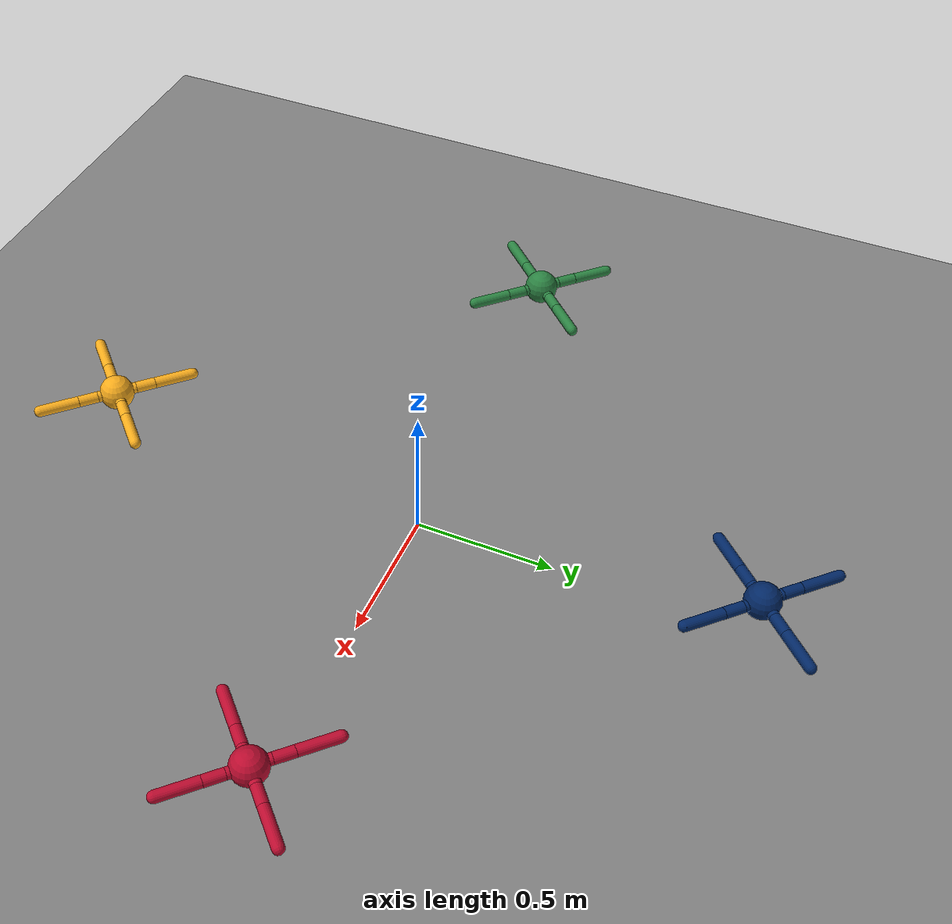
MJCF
<mujoco model="ant">
  <size njmax="5000" nconmax="1500" />
  <compiler angle="radian" coordinate="local" inertiafromgeom="true" />
  <option integrator="RK4" timestep="0.01" />
  <custom>
    <numeric data="0.0 0.0 0.55 1.0 0.0 0.0 0.0 0.0 1.0 0.0 -1.0 0.0 -1.0 0.0 1.0" name="init_qpos" />
  </custom>
  <default>
    <joint armature="1" damping="1" limited="true" />
    <geom condim="6" density="5.0" />
    <site size="0.032" type="sphere" />
  <default class="agent">
    <geom rgba="0.7412 0.0431 0.1843 1" />
  </default>
  <default class="agent1">
    <geom rgba="0.0039 0.1529 0.3961 1" />
  </default>
  </default>
  <worldbody>
    <geom name="floor" size="5 5 0.1" type="plane" condim="6" conaffinity="3" />
    <body name="agent" pos="1.2000 0.0000 0.18" childclass="agent">
      <site name="agent" rgba="1 0 0 .1" pos="0 0 -0.02" />
      <camera name="vision" pos="0 0.05 0.05" euler="1.57 0 0" />
      <geom name="torso_geom" pos="0 0 0" size="0.0625" type="sphere" rgba="0.7412 0.0431 0.1843 1.0" />
      <joint armature="0" damping="0" limited="false" margin="0.01" name="root" pos="0 0 0" type="free" />
      <body name="front_left_leg" pos="0 0 0">
        <geom fromto="0.0 0.0 0.0 0.05 0.05 0.0" name="aux_1_geom" size="0.02" type="capsule" rgba="0.7412 0.0431 0.1843 1.0" />
        <body name="aux_1" pos="0.05 0.05 0">
          <joint axis="0 0 1" name="hip_1" pos="0.0 0.0 0.0" range="-0.70 0.70" type="hinge" />
          <geom fromto="0.0 0.0 0.0 0.05 0.05 0.0" name="left_leg_geom" size="0.02" type="capsule" rgba="0.7412 0.0431 0.1843 1.0" />
          <body pos="0.05 0.05 0" name="front_left_foot">
            <joint axis="-1 1 0" name="ankle_1" pos="0.0 0.0 0.0" range="0.52 1.74" type="hinge" />
            <geom fromto="0.0 0.0 0.0 0.1 0.1 0.0" name="left_ankle_geom" size="0.02" type="capsule" density="50000.0" rgba="0.7412 0.0431 0.1843 1.0" />
          </body>
        </body>
      </body>
      <body name="front_right_leg" pos="0 0 0">
        <geom fromto="0.0 0.0 0.0 -0.05 0.05 0.0" name="aux_2_geom" size="0.02" type="capsule" rgba="0.7412 0.0431 0.1843 1.0" />
        <body name="aux_2" pos="-0.05 0.05 0">
          <joint axis="0 0 1" name="hip_2" pos="0.0 0.0 0.0" range="-0.70 0.70" type="hinge" />
          <geom fromto="0.0 0.0 0.0 -0.05 0.05 0.0" name="right_leg_geom" size="0.02" type="capsule" rgba="0.7412 0.0431 0.1843 1.0" />
          <body pos="-0.05 0.05 0" name="front_right_foot">
            <joint axis="1 1 0" name="ankle_2" pos="0.0 0.0 0.0" range="-1.74 -0.52" type="hinge" />
            <geom fromto="0.0 0.0 0.0 -0.1 0.1 0.0" name="right_ankle_geom" size="0.02" type="capsule" density="50000.0" rgba="0.7412 0.0431 0.1843 1.0" />
          </body>
        </body>
      </body>
      <body name="left_back_leg" pos="0 0 0">
        <geom fromto="0.0 0.0 0.0 -0.05 -0.05 0.0" name="aux_3_geom" size="0.02" type="capsule" rgba="0.7412 0.0431 0.1843 1.0" />
        <body name="aux_3" pos="-0.05 -0.05 0">
          <joint axis="0 0 1" name="hip_3" pos="0.0 0.0 0.0" range="-0.70 0.70" type="hinge" />
          <geom fromto="0.0 0.0 0.0 -0.05 -0.05 0.0" name="back_leg_geom" size="0.02" type="capsule" rgba="0.7412 0.0431 0.1843 1.0" />
          <body pos="-0.05 -0.05 0" name="left_back_foot">
            <joint axis="-1 1 0" name="ankle_3" pos="0.0 0.0 0.0" range="-1.74 -0.52" type="hinge" />
            <geom fromto="0.0 0.0 0.0 -0.1 -0.1 0.0" name="third_ankle_geom" size="0.02" type="capsule" density="50000.0" rgba="0.7412 0.0431 0.1843 1.0" />
          </body>
        </body>
      </body>
      <body name="right_back_leg" pos="0 0 0">
        <geom fromto="0.0 0.0 0.0 0.05 -0.05 0.0" name="aux_4_geom" size="0.02" type="capsule" rgba="0.7412 0.0431 0.1843 1.0" />
        <body name="aux_4" pos="0.05 -0.05 0">
          <joint axis="0 0 1" name="hip_4" pos="0.0 0.0 0.0" range="-0.70 0.70" type="hinge" />
          <geom fromto="0.0 0.0 0.0 0.05 -0.05 0.0" name="rightback_leg_geom" size="0.02" type="capsule" rgba="0.7412 0.0431 0.1843 1.0" />
          <body pos="0.05 -0.05 0" name="right_back_foot">
            <joint axis="1 1 0" name="ankle_4" pos="0.0 0.0 0.0" range="0.52 1.74" type="hinge" />
            <geom fromto="0.0 0.0 0.0 0.1 -0.1 0.0" name="fourth_ankle_geom" size="0.02" type="capsule" density="50000.0" rgba="0.7412 0.0431 0.1843 1.0" />
          </body>
        </body>
      </body>
    </body>
    <body name="agent1" pos="0.0000 1.2000 0.18" childclass="agent1">
      <site name="agent1" rgba="1 0 0 .1" pos="0 0 -0.02" />
      <camera name="vision1" pos="0 0.05 0.05" euler="1.57 0 0" />
      <geom name="torso_geom1" pos="0 0 0" size="0.0625" type="sphere" rgba="0.0039 0.1529 0.3961 1.0" />
      <joint armature="0" damping="0" limited="false" margin="0.01" name="root1" pos="0 0 0" type="free" />
      <body name="front_left_leg1" pos="0 0 0">
        <geom fromto="0.0 0.0 0.0 0.05 0.05 0.0" name="aux_1_geom1" size="0.02" type="capsule" rgba="0.0039 0.1529 0.3961 1.0" />
        <body name="aux_11" pos="0.05 0.05 0">
          <joint axis="0 0 1" name="hip_11" pos="0.0 0.0 0.0" range="-0.70 0.70" type="hinge" />
          <geom fromto="0.0 0.0 0.0 0.05 0.05 0.0" name="left_leg_geom1" size="0.02" type="capsule" rgba="0.0039 0.1529 0.3961 1.0" />
          <body pos="0.05 0.05 0" name="front_left_foot1">
            <joint axis="-1 1 0" name="ankle_11" pos="0.0 0.0 0.0" range="0.52 1.74" type="hinge" />
            <geom fromto="0.0 0.0 0.0 0.1 0.1 0.0" name="left_ankle_geom1" size="0.02" type="capsule" density="50000.0" rgba="0.0039 0.1529 0.3961 1.0" />
          </body>
        </body>
      </body>
      <body name="front_right_leg1" pos="0 0 0">
        <geom fromto="0.0 0.0 0.0 -0.05 0.05 0.0" name="aux_2_geom1" size="0.02" type="capsule" rgba="0.0039 0.1529 0.3961 1.0" />
        <body name="aux_21" pos="-0.05 0.05 0">
          <joint axis="0 0 1" name="hip_21" pos="0.0 0.0 0.0" range="-0.70 0.70" type="hinge" />
          <geom fromto="0.0 0.0 0.0 -0.05 0.05 0.0" name="right_leg_geom1" size="0.02" type="capsule" rgba="0.0039 0.1529 0.3961 1.0" />
          <body pos="-0.05 0.05 0" name="front_right_foot1">
            <joint axis="1 1 0" name="ankle_21" pos="0.0 0.0 0.0" range="-1.74 -0.52" type="hinge" />
            <geom fromto="0.0 0.0 0.0 -0.1 0.1 0.0" name="right_ankle_geom1" size="0.02" type="capsule" density="50000.0" rgba="0.0039 0.1529 0.3961 1.0" />
          </body>
        </body>
      </body>
      <body name="left_back_leg1" pos="0 0 0">
        <geom fromto="0.0 0.0 0.0 -0.05 -0.05 0.0" name="aux_3_geom1" size="0.02" type="capsule" rgba="0.0039 0.1529 0.3961 1.0" />
        <body name="aux_31" pos="-0.05 -0.05 0">
          <joint axis="0 0 1" name="hip_31" pos="0.0 0.0 0.0" range="-0.70 0.70" type="hinge" />
          <geom fromto="0.0 0.0 0.0 -0.05 -0.05 0.0" name="back_leg_geom1" size="0.02" type="capsule" rgba="0.0039 0.1529 0.3961 1.0" />
          <body pos="-0.05 -0.05 0" name="left_back_foot1">
            <joint axis="-1 1 0" name="ankle_31" pos="0.0 0.0 0.0" range="-1.74 -0.52" type="hinge" />
            <geom fromto="0.0 0.0 0.0 -0.1 -0.1 0.0" name="third_ankle_geom1" size="0.02" type="capsule" density="50000.0" rgba="0.0039 0.1529 0.3961 1.0" />
          </body>
        </body>
      </body>
      <body name="right_back_leg1" pos="0 0 0">
        <geom fromto="0.0 0.0 0.0 0.05 -0.05 0.0" name="aux_4_geom1" size="0.02" type="capsule" rgba="0.0039 0.1529 0.3961 1.0" />
        <body name="aux_41" pos="0.05 -0.05 0">
          <joint axis="0 0 1" name="hip_41" pos="0.0 0.0 0.0" range="-0.70 0.70" type="hinge" />
          <geom fromto="0.0 0.0 0.0 0.05 -0.05 0.0" name="rightback_leg_geom1" size="0.02" type="capsule" rgba="0.0039 0.1529 0.3961 1.0" />
          <body pos="0.05 -0.05 0" name="right_back_foot1">
            <joint axis="1 1 0" name="ankle_41" pos="0.0 0.0 0.0" range="0.52 1.74" type="hinge" />
            <geom fromto="0.0 0.0 0.0 0.1 -0.1 0.0" name="fourth_ankle_geom1" size="0.02" type="capsule" density="50000.0" rgba="0.0039 0.1529 0.3961 1.0" />
          </body>
        </body>
      </body>
    </body>
  <body name="agent2" pos="-1.2000 0.0000 0.18" childclass="agent1">
      <site name="agent2" rgba="1 0 0 .1" pos="0 0 -0.02" />
      <camera name="vision2" pos="0 0.05 0.05" euler="1.57 0 0" />
      <geom name="torso_geom2" pos="0 0 0" size="0.0625" type="sphere" rgba="0.1686 0.5137 0.2588 1.0" />
      <joint armature="0" damping="0" limited="false" margin="0.01" name="root2" pos="0 0 0" type="free" />
      <body name="front_left_leg2" pos="0 0 0">
        <geom fromto="0.0 0.0 0.0 0.05 0.05 0.0" name="aux_1_geom2" size="0.02" type="capsule" rgba="0.1686 0.5137 0.2588 1.0" />
        <body name="aux_12" pos="0.05 0.05 0">
          <joint axis="0 0 1" name="hip_12" pos="0.0 0.0 0.0" range="-0.70 0.70" type="hinge" />
          <geom fromto="0.0 0.0 0.0 0.05 0.05 0.0" name="left_leg_geom2" size="0.02" type="capsule" rgba="0.1686 0.5137 0.2588 1.0" />
          <body pos="0.05 0.05 0" name="front_left_foot2">
            <joint axis="-1 1 0" name="ankle_12" pos="0.0 0.0 0.0" range="0.52 1.74" type="hinge" />
            <geom fromto="0.0 0.0 0.0 0.1 0.1 0.0" name="left_ankle_geom2" size="0.02" type="capsule" density="50000.0" rgba="0.1686 0.5137 0.2588 1.0" />
          </body>
        </body>
      </body>
      <body name="front_right_leg2" pos="0 0 0">
        <geom fromto="0.0 0.0 0.0 -0.05 0.05 0.0" name="aux_2_geom2" size="0.02" type="capsule" rgba="0.1686 0.5137 0.2588 1.0" />
        <body name="aux_22" pos="-0.05 0.05 0">
          <joint axis="0 0 1" name="hip_22" pos="0.0 0.0 0.0" range="-0.70 0.70" type="hinge" />
          <geom fromto="0.0 0.0 0.0 -0.05 0.05 0.0" name="right_leg_geom2" size="0.02" type="capsule" rgba="0.1686 0.5137 0.2588 1.0" />
          <body pos="-0.05 0.05 0" name="front_right_foot2">
            <joint axis="1 1 0" name="ankle_22" pos="0.0 0.0 0.0" range="-1.74 -0.52" type="hinge" />
            <geom fromto="0.0 0.0 0.0 -0.1 0.1 0.0" name="right_ankle_geom2" size="0.02" type="capsule" density="50000.0" rgba="0.1686 0.5137 0.2588 1.0" />
          </body>
        </body>
      </body>
      <body name="left_back_leg2" pos="0 0 0">
        <geom fromto="0.0 0.0 0.0 -0.05 -0.05 0.0" name="aux_3_geom2" size="0.02" type="capsule" rgba="0.1686 0.5137 0.2588 1.0" />
        <body name="aux_32" pos="-0.05 -0.05 0">
          <joint axis="0 0 1" name="hip_32" pos="0.0 0.0 0.0" range="-0.70 0.70" type="hinge" />
          <geom fromto="0.0 0.0 0.0 -0.05 -0.05 0.0" name="back_leg_geom2" size="0.02" type="capsule" rgba="0.1686 0.5137 0.2588 1.0" />
          <body pos="-0.05 -0.05 0" name="left_back_foot2">
            <joint axis="-1 1 0" name="ankle_32" pos="0.0 0.0 0.0" range="-1.74 -0.52" type="hinge" />
            <geom fromto="0.0 0.0 0.0 -0.1 -0.1 0.0" name="third_ankle_geom2" size="0.02" type="capsule" density="50000.0" rgba="0.1686 0.5137 0.2588 1.0" />
          </body>
        </body>
      </body>
      <body name="right_back_leg2" pos="0 0 0">
        <geom fromto="0.0 0.0 0.0 0.05 -0.05 0.0" name="aux_4_geom2" size="0.02" type="capsule" rgba="0.1686 0.5137 0.2588 1.0" />
        <body name="aux_42" pos="0.05 -0.05 0">
          <joint axis="0 0 1" name="hip_42" pos="0.0 0.0 0.0" range="-0.70 0.70" type="hinge" />
          <geom fromto="0.0 0.0 0.0 0.05 -0.05 0.0" name="rightback_leg_geom2" size="0.02" type="capsule" rgba="0.1686 0.5137 0.2588 1.0" />
          <body pos="0.05 -0.05 0" name="right_back_foot2">
            <joint axis="1 1 0" name="ankle_42" pos="0.0 0.0 0.0" range="0.52 1.74" type="hinge" />
            <geom fromto="0.0 0.0 0.0 0.1 -0.1 0.0" name="fourth_ankle_geom2" size="0.02" type="capsule" density="50000.0" rgba="0.1686 0.5137 0.2588 1.0" />
          </body>
        </body>
      </body>
    </body>
  <body name="agent3" pos="-0.0000 -1.2000 0.18" childclass="agent1">
      <site name="agent3" rgba="1 0 0 .1" pos="0 0 -0.02" />
      <camera name="vision3" pos="0 0.05 0.05" euler="1.57 0 0" />
      <geom name="torso_geom3" pos="0 0 0" size="0.0625" type="sphere" rgba="0.9725 0.6745 0.1098 1.0" />
      <joint armature="0" damping="0" limited="false" margin="0.01" name="root3" pos="0 0 0" type="free" />
      <body name="front_left_leg3" pos="0 0 0">
        <geom fromto="0.0 0.0 0.0 0.05 0.05 0.0" name="aux_1_geom3" size="0.02" type="capsule" rgba="0.9725 0.6745 0.1098 1.0" />
        <body name="aux_13" pos="0.05 0.05 0">
          <joint axis="0 0 1" name="hip_13" pos="0.0 0.0 0.0" range="-0.70 0.70" type="hinge" />
          <geom fromto="0.0 0.0 0.0 0.05 0.05 0.0" name="left_leg_geom3" size="0.02" type="capsule" rgba="0.9725 0.6745 0.1098 1.0" />
          <body pos="0.05 0.05 0" name="front_left_foot3">
            <joint axis="-1 1 0" name="ankle_13" pos="0.0 0.0 0.0" range="0.52 1.74" type="hinge" />
            <geom fromto="0.0 0.0 0.0 0.1 0.1 0.0" name="left_ankle_geom3" size="0.02" type="capsule" density="50000.0" rgba="0.9725 0.6745 0.1098 1.0" />
          </body>
        </body>
      </body>
      <body name="front_right_leg3" pos="0 0 0">
        <geom fromto="0.0 0.0 0.0 -0.05 0.05 0.0" name="aux_2_geom3" size="0.02" type="capsule" rgba="0.9725 0.6745 0.1098 1.0" />
        <body name="aux_23" pos="-0.05 0.05 0">
          <joint axis="0 0 1" name="hip_23" pos="0.0 0.0 0.0" range="-0.70 0.70" type="hinge" />
          <geom fromto="0.0 0.0 0.0 -0.05 0.05 0.0" name="right_leg_geom3" size="0.02" type="capsule" rgba="0.9725 0.6745 0.1098 1.0" />
          <body pos="-0.05 0.05 0" name="front_right_foot3">
            <joint axis="1 1 0" name="ankle_23" pos="0.0 0.0 0.0" range="-1.74 -0.52" type="hinge" />
            <geom fromto="0.0 0.0 0.0 -0.1 0.1 0.0" name="right_ankle_geom3" size="0.02" type="capsule" density="50000.0" rgba="0.9725 0.6745 0.1098 1.0" />
          </body>
        </body>
      </body>
      <body name="left_back_leg3" pos="0 0 0">
        <geom fromto="0.0 0.0 0.0 -0.05 -0.05 0.0" name="aux_3_geom3" size="0.02" type="capsule" rgba="0.9725 0.6745 0.1098 1.0" />
        <body name="aux_33" pos="-0.05 -0.05 0">
          <joint axis="0 0 1" name="hip_33" pos="0.0 0.0 0.0" range="-0.70 0.70" type="hinge" />
          <geom fromto="0.0 0.0 0.0 -0.05 -0.05 0.0" name="back_leg_geom3" size="0.02" type="capsule" rgba="0.9725 0.6745 0.1098 1.0" />
          <body pos="-0.05 -0.05 0" name="left_back_foot3">
            <joint axis="-1 1 0" name="ankle_33" pos="0.0 0.0 0.0" range="-1.74 -0.52" type="hinge" />
            <geom fromto="0.0 0.0 0.0 -0.1 -0.1 0.0" name="third_ankle_geom3" size="0.02" type="capsule" density="50000.0" rgba="0.9725 0.6745 0.1098 1.0" />
          </body>
        </body>
      </body>
      <body name="right_back_leg3" pos="0 0 0">
        <geom fromto="0.0 0.0 0.0 0.05 -0.05 0.0" name="aux_4_geom3" size="0.02" type="capsule" rgba="0.9725 0.6745 0.1098 1.0" />
        <body name="aux_43" pos="0.05 -0.05 0">
          <joint axis="0 0 1" name="hip_43" pos="0.0 0.0 0.0" range="-0.70 0.70" type="hinge" />
          <geom fromto="0.0 0.0 0.0 0.05 -0.05 0.0" name="rightback_leg_geom3" size="0.02" type="capsule" rgba="0.9725 0.6745 0.1098 1.0" />
          <body pos="0.05 -0.05 0" name="right_back_foot3">
            <joint axis="1 1 0" name="ankle_43" pos="0.0 0.0 0.0" range="0.52 1.74" type="hinge" />
            <geom fromto="0.0 0.0 0.0 0.1 -0.1 0.0" name="fourth_ankle_geom3" size="0.02" type="capsule" density="50000.0" rgba="0.9725 0.6745 0.1098 1.0" />
          </body>
        </body>
      </body>
    </body>
  </worldbody>
  <sensor>

    <accelerometer site="agent" name="accelerometer" />
    <velocimeter site="agent" name="velocimeter" />
    <gyro site="agent" name="gyro" />
    <magnetometer site="agent" name="magnetometer" />

    <subtreecom body="agent" name="subtreecom" />
    <subtreelinvel body="agent" name="subtreelinvel" />
    <subtreeangmom body="agent" name="subtreeangmom" />

    <framepos objtype="site" objname="agent" name="agent_pos" />

    <jointpos joint="hip_1" name="hip_1" />
    <jointpos joint="ankle_1" name="ankle_1" />
    <jointpos joint="hip_2" name="hip_2" />
    <jointpos joint="ankle_2" name="ankle_2" />
    <jointpos joint="hip_3" name="hip_3" />
    <jointpos joint="ankle_3" name="ankle_3" />
    <jointpos joint="hip_4" name="hip_4" />
    <jointpos joint="ankle_4" name="ankle_4" />

    <frameangvel objtype="site" objname="agent" name="agent_qvel" />

    <jointvel joint="hip_1" name="hip_1_vel" />
    <jointvel joint="ankle_1" name="ankle_1_vel" />
    <jointvel joint="hip_2" name="hip_2_vel" />
    <jointvel joint="ankle_2" name="ankle_2_vel" />
    <jointvel joint="hip_3" name="hip_3_vel" />
    <jointvel joint="ankle_3" name="ankle_3_vel" />
    <jointvel joint="hip_4" name="hip_4_vel" />
    <jointvel joint="ankle_4" name="ankle_4_vel" />

    <accelerometer site="agent1" name="accelerometer1" />
    <velocimeter site="agent1" name="velocimeter1" />
    <gyro site="agent1" name="gyro1" />
    <magnetometer site="agent1" name="magnetometer1" />

    <subtreecom body="agent1" name="subtreecom1" />
    <subtreelinvel body="agent1" name="subtreelinvel1" />
    <subtreeangmom body="agent1" name="subtreeangmom1" />

    <framepos objtype="site" objname="agent1" name="agent_pos1" />

    <jointpos joint="hip_11" name="hip_11" />
    <jointpos joint="ankle_11" name="ankle_11" />
    <jointpos joint="hip_21" name="hip_21" />
    <jointpos joint="ankle_21" name="ankle_21" />
    <jointpos joint="hip_31" name="hip_31" />
    <jointpos joint="ankle_31" name="ankle_31" />
    <jointpos joint="hip_41" name="hip_41" />
    <jointpos joint="ankle_41" name="ankle_41" />

    <frameangvel objtype="site" objname="agent1" name="agent_qvel1" />

    <jointvel joint="hip_11" name="hip_1_vel1" />
    <jointvel joint="ankle_11" name="ankle_1_vel1" />
    <jointvel joint="hip_21" name="hip_2_vel1" />
    <jointvel joint="ankle_21" name="ankle_2_vel1" />
    <jointvel joint="hip_31" name="hip_3_vel1" />
    <jointvel joint="ankle_31" name="ankle_3_vel1" />
    <jointvel joint="hip_41" name="hip_4_vel1" />
    <jointvel joint="ankle_41" name="ankle_4_vel1" />
  <accelerometer site="agent2" name="accelerometer2" />
    <velocimeter site="agent2" name="velocimeter2" />
    <gyro site="agent2" name="gyro2" />
    <magnetometer site="agent2" name="magnetometer2" />

    <subtreecom body="agent2" name="subtreecom2" />
    <subtreelinvel body="agent2" name="subtreelinvel2" />
    <subtreeangmom body="agent2" name="subtreeangmom2" />

    <framepos objtype="site" objname="agent2" name="agent_pos2" />

    <jointpos joint="hip_12" name="hip_12" />
    <jointpos joint="ankle_12" name="ankle_12" />
    <jointpos joint="hip_22" name="hip_22" />
    <jointpos joint="ankle_22" name="ankle_22" />
    <jointpos joint="hip_32" name="hip_32" />
    <jointpos joint="ankle_32" name="ankle_32" />
    <jointpos joint="hip_42" name="hip_42" />
    <jointpos joint="ankle_42" name="ankle_42" />

    <frameangvel objtype="site" objname="agent2" name="agent_qvel2" />

    <jointvel joint="hip_12" name="hip_1_vel2" />
    <jointvel joint="ankle_12" name="ankle_1_vel2" />
    <jointvel joint="hip_22" name="hip_2_vel2" />
    <jointvel joint="ankle_22" name="ankle_2_vel2" />
    <jointvel joint="hip_32" name="hip_3_vel2" />
    <jointvel joint="ankle_32" name="ankle_3_vel2" />
    <jointvel joint="hip_42" name="hip_4_vel2" />
    <jointvel joint="ankle_42" name="ankle_4_vel2" />
  <accelerometer site="agent3" name="accelerometer3" />
    <velocimeter site="agent3" name="velocimeter3" />
    <gyro site="agent3" name="gyro3" />
    <magnetometer site="agent3" name="magnetometer3" />

    <subtreecom body="agent3" name="subtreecom3" />
    <subtreelinvel body="agent3" name="subtreelinvel3" />
    <subtreeangmom body="agent3" name="subtreeangmom3" />

    <framepos objtype="site" objname="agent3" name="agent_pos3" />

    <jointpos joint="hip_13" name="hip_13" />
    <jointpos joint="ankle_13" name="ankle_13" />
    <jointpos joint="hip_23" name="hip_23" />
    <jointpos joint="ankle_23" name="ankle_23" />
    <jointpos joint="hip_33" name="hip_33" />
    <jointpos joint="ankle_33" name="ankle_33" />
    <jointpos joint="hip_43" name="hip_43" />
    <jointpos joint="ankle_43" name="ankle_43" />

    <frameangvel objtype="site" objname="agent3" name="agent_qvel3" />

    <jointvel joint="hip_13" name="hip_1_vel3" />
    <jointvel joint="ankle_13" name="ankle_1_vel3" />
    <jointvel joint="hip_23" name="hip_2_vel3" />
    <jointvel joint="ankle_23" name="ankle_2_vel3" />
    <jointvel joint="hip_33" name="hip_3_vel3" />
    <jointvel joint="ankle_33" name="ankle_3_vel3" />
    <jointvel joint="hip_43" name="hip_4_vel3" />
    <jointvel joint="ankle_43" name="ankle_4_vel3" />
  </sensor>
  <actuator>
    <motor ctrllimited="true" ctrlrange="-1.0 1.0" joint="hip_1" gear="150" />
    <motor ctrllimited="true" ctrlrange="-1.0 1.0" joint="ankle_1" gear="150" />
    <motor ctrllimited="true" ctrlrange="-1.0 1.0" joint="hip_2" gear="150" />
    <motor ctrllimited="true" ctrlrange="-1.0 1.0" joint="ankle_2" gear="150" />
    <motor ctrllimited="true" ctrlrange="-1.0 1.0" joint="hip_3" gear="150" />
    <motor ctrllimited="true" ctrlrange="-1.0 1.0" joint="ankle_3" gear="150" />
    <motor ctrllimited="true" ctrlrange="-1.0 1.0" joint="hip_4" gear="150" />
    <motor ctrllimited="true" ctrlrange="-1.0 1.0" joint="ankle_4" gear="150" />

    <motor ctrllimited="true" ctrlrange="-1.0 1.0" joint="hip_11" gear="150" />
    <motor ctrllimited="true" ctrlrange="-1.0 1.0" joint="ankle_11" gear="150" />
    <motor ctrllimited="true" ctrlrange="-1.0 1.0" joint="hip_21" gear="150" />
    <motor ctrllimited="true" ctrlrange="-1.0 1.0" joint="ankle_21" gear="150" />
    <motor ctrllimited="true" ctrlrange="-1.0 1.0" joint="hip_31" gear="150" />
    <motor ctrllimited="true" ctrlrange="-1.0 1.0" joint="ankle_31" gear="150" />
    <motor ctrllimited="true" ctrlrange="-1.0 1.0" joint="hip_41" gear="150" />
    <motor ctrllimited="true" ctrlrange="-1.0 1.0" joint="ankle_41" gear="150" />
  <motor ctrllimited="true" ctrlrange="-1.0 1.0" joint="hip_12" gear="150" />
    <motor ctrllimited="true" ctrlrange="-1.0 1.0" joint="ankle_12" gear="150" />
    <motor ctrllimited="true" ctrlrange="-1.0 1.0" joint="hip_22" gear="150" />
    <motor ctrllimited="true" ctrlrange="-1.0 1.0" joint="ankle_22" gear="150" />
    <motor ctrllimited="true" ctrlrange="-1.0 1.0" joint="hip_32" gear="150" />
    <motor ctrllimited="true" ctrlrange="-1.0 1.0" joint="ankle_32" gear="150" />
    <motor ctrllimited="true" ctrlrange="-1.0 1.0" joint="hip_42" gear="150" />
    <motor ctrllimited="true" ctrlrange="-1.0 1.0" joint="ankle_42" gear="150" />
  <motor ctrllimited="true" ctrlrange="-1.0 1.0" joint="hip_13" gear="150" />
    <motor ctrllimited="true" ctrlrange="-1.0 1.0" joint="ankle_13" gear="150" />
    <motor ctrllimited="true" ctrlrange="-1.0 1.0" joint="hip_23" gear="150" />
    <motor ctrllimited="true" ctrlrange="-1.0 1.0" joint="ankle_23" gear="150" />
    <motor ctrllimited="true" ctrlrange="-1.0 1.0" joint="hip_33" gear="150" />
    <motor ctrllimited="true" ctrlrange="-1.0 1.0" joint="ankle_33" gear="150" />
    <motor ctrllimited="true" ctrlrange="-1.0 1.0" joint="hip_43" gear="150" />
    <motor ctrllimited="true" ctrlrange="-1.0 1.0" joint="ankle_43" gear="150" />
  </actuator>
</mujoco>
